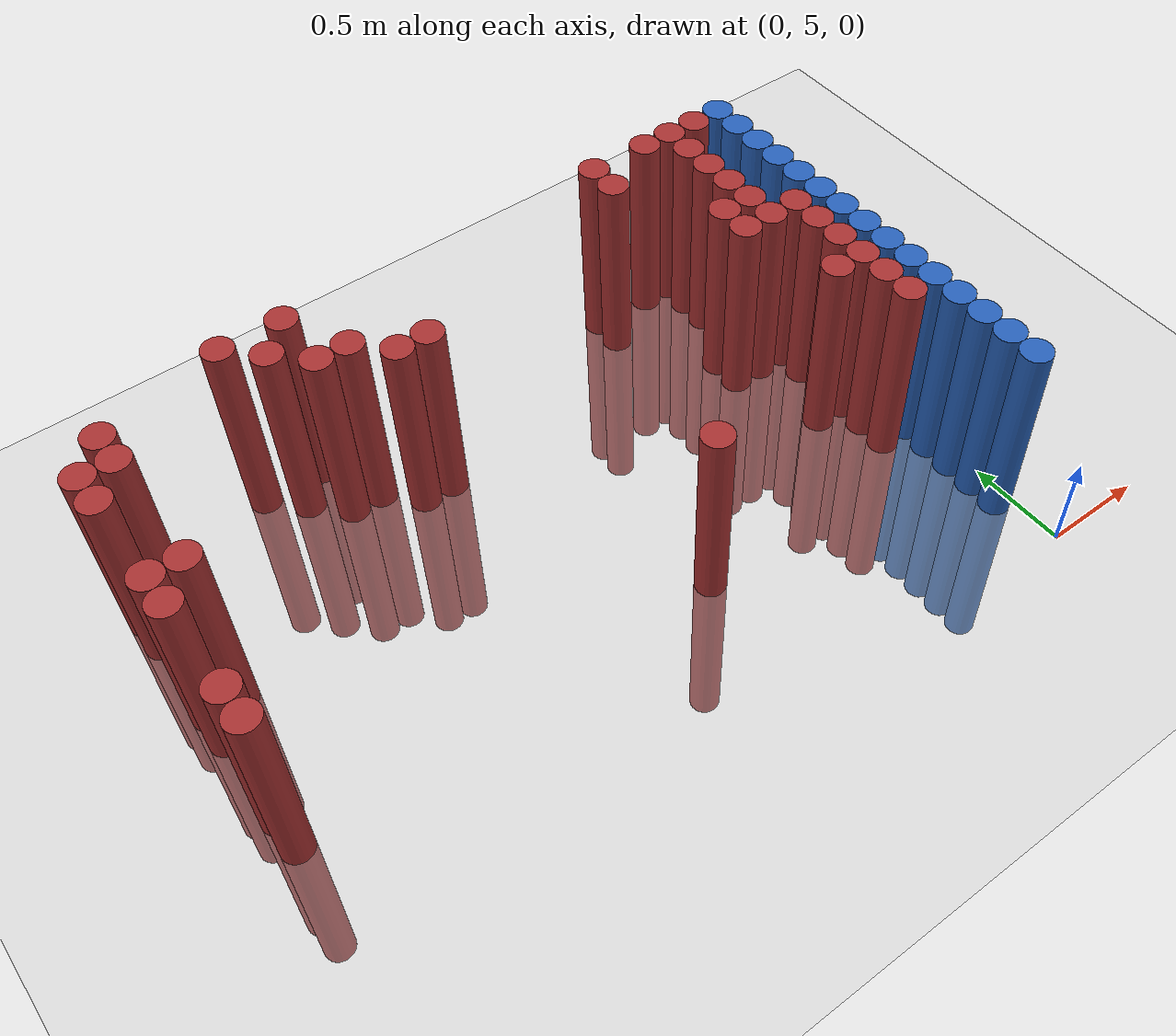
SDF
<sdf version="1.6">
 <world name="default">
  <model name="ground_plane">
   <static>1</static>
   <link name="link">
    <collision name="collision">
     <geometry><plane><normal>0 0 1</normal><size>100 100</size></plane></geometry>
     <surface><friction><ode><mu>100</mu><mu2>50</mu2></ode></friction></surface>
    </collision>
    <visual name="visual">
     <cast_shadows>0</cast_shadows>
     <geometry><plane><normal>0 0 1</normal><size>100 100</size></plane></geometry>
     <material>
      <script><uri>file://media/materials/scripts/gazebo.material</uri><name>Gazebo/Grey</name></script>
     </material>
    </visual>
   </link>
  </model>
  <model name="unit_cylinder_153">
   <static>1</static>
   <pose>-3.525000 5.775000 0.000000 0.000000 0.000000 0.000000</pose>
   <link name="link">
    <inertial>
     <mass>1</mass>
     <inertia><ixx>0.145833</ixx><ixy>0</ixy><ixz>0</ixz><iyy>0.145833</iyy><iyz>0</iyz><izz>0.125</izz></inertia>
    </inertial>
    <collision name="collision">
     <geometry><cylinder><radius>0.075000</radius><length>2</length></cylinder></geometry>
    </collision>
    <visual name="visual">
     <geometry><cylinder><radius>0.075000</radius><length>2</length></cylinder></geometry>
     <material>
      <ambient>0.648000 0.192000 0.192000 1</ambient>
      <diffuse>0.648000 0.192000 0.192000 1</diffuse>
     </material>
     <material>
      <script><name>Gazebo/Grey</name><uri>file://media/materials/scripts/gazebo.material</uri></script>
     </material>
    </visual>
   </link>
  </model>
  <model name="unit_cylinder_154">
   <static>1</static>
   <pose>-3.525000 5.925000 0.000000 0.000000 0.000000 0.000000</pose>
   <link name="link">
    <inertial>
     <mass>1</mass>
     <inertia><ixx>0.145833</ixx><ixy>0</ixy><ixz>0</ixz><iyy>0.145833</iyy><iyz>0</iyz><izz>0.125</izz></inertia>
    </inertial>
    <collision name="collision">
     <geometry><cylinder><radius>0.075000</radius><length>2</length></cylinder></geometry>
    </collision>
    <visual name="visual">
     <geometry><cylinder><radius>0.075000</radius><length>2</length></cylinder></geometry>
     <material>
      <ambient>0.648000 0.192000 0.192000 1</ambient>
      <diffuse>0.648000 0.192000 0.192000 1</diffuse>
     </material>
     <material>
      <script><name>Gazebo/Grey</name><uri>file://media/materials/scripts/gazebo.material</uri></script>
     </material>
    </visual>
   </link>
  </model>
  <model name="unit_cylinder_155">
   <static>1</static>
   <pose>-3.525000 6.375000 0.000000 0.000000 0.000000 0.000000</pose>
   <link name="link">
    <inertial>
     <mass>1</mass>
     <inertia><ixx>0.145833</ixx><ixy>0</ixy><ixz>0</ixz><iyy>0.145833</iyy><iyz>0</iyz><izz>0.125</izz></inertia>
    </inertial>
    <collision name="collision">
     <geometry><cylinder><radius>0.075000</radius><length>2</length></cylinder></geometry>
    </collision>
    <visual name="visual">
     <geometry><cylinder><radius>0.075000</radius><length>2</length></cylinder></geometry>
     <material>
      <ambient>0.648000 0.192000 0.192000 1</ambient>
      <diffuse>0.648000 0.192000 0.192000 1</diffuse>
     </material>
     <material>
      <script><name>Gazebo/Grey</name><uri>file://media/materials/scripts/gazebo.material</uri></script>
     </material>
    </visual>
   </link>
  </model>
  <model name="unit_cylinder_156">
   <static>1</static>
   <pose>-3.525000 6.525000 0.000000 0.000000 0.000000 0.000000</pose>
   <link name="link">
    <inertial>
     <mass>1</mass>
     <inertia><ixx>0.145833</ixx><ixy>0</ixy><ixz>0</ixz><iyy>0.145833</iyy><iyz>0</iyz><izz>0.125</izz></inertia>
    </inertial>
    <collision name="collision">
     <geometry><cylinder><radius>0.075000</radius><length>2</length></cylinder></geometry>
    </collision>
    <visual name="visual">
     <geometry><cylinder><radius>0.075000</radius><length>2</length></cylinder></geometry>
     <material>
      <ambient>0.648000 0.192000 0.192000 1</ambient>
      <diffuse>0.648000 0.192000 0.192000 1</diffuse>
     </material>
     <material>
      <script><name>Gazebo/Grey</name><uri>file://media/materials/scripts/gazebo.material</uri></script>
     </material>
    </visual>
   </link>
  </model>
  <model name="unit_cylinder_157">
   <static>1</static>
   <pose>-3.525000 6.975000 0.000000 0.000000 0.000000 0.000000</pose>
   <link name="link">
    <inertial>
     <mass>1</mass>
     <inertia><ixx>0.145833</ixx><ixy>0</ixy><ixz>0</ixz><iyy>0.145833</iyy><iyz>0</iyz><izz>0.125</izz></inertia>
    </inertial>
    <collision name="collision">
     <geometry><cylinder><radius>0.075000</radius><length>2</length></cylinder></geometry>
    </collision>
    <visual name="visual">
     <geometry><cylinder><radius>0.075000</radius><length>2</length></cylinder></geometry>
     <material>
      <ambient>0.648000 0.192000 0.192000 1</ambient>
      <diffuse>0.648000 0.192000 0.192000 1</diffuse>
     </material>
     <material>
      <script><name>Gazebo/Grey</name><uri>file://media/materials/scripts/gazebo.material</uri></script>
     </material>
    </visual>
   </link>
  </model>
  <model name="unit_cylinder_158">
   <static>1</static>
   <pose>-3.525000 7.125000 0.000000 0.000000 0.000000 0.000000</pose>
   <link name="link">
    <inertial>
     <mass>1</mass>
     <inertia><ixx>0.145833</ixx><ixy>0</ixy><ixz>0</ixz><iyy>0.145833</iyy><iyz>0</iyz><izz>0.125</izz></inertia>
    </inertial>
    <collision name="collision">
     <geometry><cylinder><radius>0.075000</radius><length>2</length></cylinder></geometry>
    </collision>
    <visual name="visual">
     <geometry><cylinder><radius>0.075000</radius><length>2</length></cylinder></geometry>
     <material>
      <ambient>0.648000 0.192000 0.192000 1</ambient>
      <diffuse>0.648000 0.192000 0.192000 1</diffuse>
     </material>
     <material>
      <script><name>Gazebo/Grey</name><uri>file://media/materials/scripts/gazebo.material</uri></script>
     </material>
    </visual>
   </link>
  </model>
  <model name="unit_cylinder_162">
   <static>1</static>
   <pose>-3.375000 6.525000 0.000000 0.000000 0.000000 0.000000</pose>
   <link name="link">
    <inertial>
     <mass>1</mass>
     <inertia><ixx>0.145833</ixx><ixy>0</ixy><ixz>0</ixz><iyy>0.145833</iyy><iyz>0</iyz><izz>0.125</izz></inertia>
    </inertial>
    <collision name="collision">
     <geometry><cylinder><radius>0.075000</radius><length>2</length></cylinder></geometry>
    </collision>
    <visual name="visual">
     <geometry><cylinder><radius>0.075000</radius><length>2</length></cylinder></geometry>
     <material>
      <ambient>0.648000 0.192000 0.192000 1</ambient>
      <diffuse>0.648000 0.192000 0.192000 1</diffuse>
     </material>
     <material>
      <script><name>Gazebo/Grey</name><uri>file://media/materials/scripts/gazebo.material</uri></script>
     </material>
    </visual>
   </link>
  </model>
  <model name="unit_cylinder_163">
   <static>1</static>
   <pose>-3.375000 7.125000 0.000000 0.000000 0.000000 0.000000</pose>
   <link name="link">
    <inertial>
     <mass>1</mass>
     <inertia><ixx>0.145833</ixx><ixy>0</ixy><ixz>0</ixz><iyy>0.145833</iyy><iyz>0</iyz><izz>0.125</izz></inertia>
    </inertial>
    <collision name="collision">
     <geometry><cylinder><radius>0.075000</radius><length>2</length></cylinder></geometry>
    </collision>
    <visual name="visual">
     <geometry><cylinder><radius>0.075000</radius><length>2</length></cylinder></geometry>
     <material>
      <ambient>0.648000 0.192000 0.192000 1</ambient>
      <diffuse>0.648000 0.192000 0.192000 1</diffuse>
     </material>
     <material>
      <script><name>Gazebo/Grey</name><uri>file://media/materials/scripts/gazebo.material</uri></script>
     </material>
    </visual>
   </link>
  </model>
  <model name="unit_cylinder_164">
   <static>1</static>
   <pose>-3.375000 7.275000 0.000000 0.000000 0.000000 0.000000</pose>
   <link name="link">
    <inertial>
     <mass>1</mass>
     <inertia><ixx>0.145833</ixx><ixy>0</ixy><ixz>0</ixz><iyy>0.145833</iyy><iyz>0</iyz><izz>0.125</izz></inertia>
    </inertial>
    <collision name="collision">
     <geometry><cylinder><radius>0.075000</radius><length>2</length></cylinder></geometry>
    </collision>
    <visual name="visual">
     <geometry><cylinder><radius>0.075000</radius><length>2</length></cylinder></geometry>
     <material>
      <ambient>0.648000 0.192000 0.192000 1</ambient>
      <diffuse>0.648000 0.192000 0.192000 1</diffuse>
     </material>
     <material>
      <script><name>Gazebo/Grey</name><uri>file://media/materials/scripts/gazebo.material</uri></script>
     </material>
    </visual>
   </link>
  </model>
  <model name="unit_cylinder_167">
   <static>1</static>
   <pose>-2.775000 7.425000 0.000000 0.000000 0.000000 0.000000</pose>
   <link name="link">
    <inertial>
     <mass>1</mass>
     <inertia><ixx>0.145833</ixx><ixy>0</ixy><ixz>0</ixz><iyy>0.145833</iyy><iyz>0</iyz><izz>0.125</izz></inertia>
    </inertial>
    <collision name="collision">
     <geometry><cylinder><radius>0.075000</radius><length>2</length></cylinder></geometry>
    </collision>
    <visual name="visual">
     <geometry><cylinder><radius>0.075000</radius><length>2</length></cylinder></geometry>
     <material>
      <ambient>0.648000 0.192000 0.192000 1</ambient>
      <diffuse>0.648000 0.192000 0.192000 1</diffuse>
     </material>
     <material>
      <script><name>Gazebo/Grey</name><uri>file://media/materials/scripts/gazebo.material</uri></script>
     </material>
    </visual>
   </link>
  </model>
  <model name="unit_cylinder_169">
   <static>1</static>
   <pose>-2.625000 7.275000 0.000000 0.000000 0.000000 0.000000</pose>
   <link name="link">
    <inertial>
     <mass>1</mass>
     <inertia><ixx>0.145833</ixx><ixy>0</ixy><ixz>0</ixz><iyy>0.145833</iyy><iyz>0</iyz><izz>0.125</izz></inertia>
    </inertial>
    <collision name="collision">
     <geometry><cylinder><radius>0.075000</radius><length>2</length></cylinder></geometry>
    </collision>
    <visual name="visual">
     <geometry><cylinder><radius>0.075000</radius><length>2</length></cylinder></geometry>
     <material>
      <ambient>0.648000 0.192000 0.192000 1</ambient>
      <diffuse>0.648000 0.192000 0.192000 1</diffuse>
     </material>
     <material>
      <script><name>Gazebo/Grey</name><uri>file://media/materials/scripts/gazebo.material</uri></script>
     </material>
    </visual>
   </link>
  </model>
  <model name="unit_cylinder_173">
   <static>1</static>
   <pose>-2.475000 7.125000 0.000000 0.000000 0.000000 0.000000</pose>
   <link name="link">
    <inertial>
     <mass>1</mass>
     <inertia><ixx>0.145833</ixx><ixy>0</ixy><ixz>0</ixz><iyy>0.145833</iyy><iyz>0</iyz><izz>0.125</izz></inertia>
    </inertial>
    <collision name="collision">
     <geometry><cylinder><radius>0.075000</radius><length>2</length></cylinder></geometry>
    </collision>
    <visual name="visual">
     <geometry><cylinder><radius>0.075000</radius><length>2</length></cylinder></geometry>
     <material>
      <ambient>0.648000 0.192000 0.192000 1</ambient>
      <diffuse>0.648000 0.192000 0.192000 1</diffuse>
     </material>
     <material>
      <script><name>Gazebo/Grey</name><uri>file://media/materials/scripts/gazebo.material</uri></script>
     </material>
    </visual>
   </link>
  </model>
  <model name="unit_cylinder_174">
   <static>1</static>
   <pose>-2.475000 7.425000 0.000000 0.000000 0.000000 0.000000</pose>
   <link name="link">
    <inertial>
     <mass>1</mass>
     <inertia><ixx>0.145833</ixx><ixy>0</ixy><ixz>0</ixz><iyy>0.145833</iyy><iyz>0</iyz><izz>0.125</izz></inertia>
    </inertial>
    <collision name="collision">
     <geometry><cylinder><radius>0.075000</radius><length>2</length></cylinder></geometry>
    </collision>
    <visual name="visual">
     <geometry><cylinder><radius>0.075000</radius><length>2</length></cylinder></geometry>
     <material>
      <ambient>0.648000 0.192000 0.192000 1</ambient>
      <diffuse>0.648000 0.192000 0.192000 1</diffuse>
     </material>
     <material>
      <script><name>Gazebo/Grey</name><uri>file://media/materials/scripts/gazebo.material</uri></script>
     </material>
    </visual>
   </link>
  </model>
  <model name="unit_cylinder_176">
   <static>1</static>
   <pose>-2.325000 7.125000 0.000000 0.000000 0.000000 0.000000</pose>
   <link name="link">
    <inertial>
     <mass>1</mass>
     <inertia><ixx>0.145833</ixx><ixy>0</ixy><ixz>0</ixz><iyy>0.145833</iyy><iyz>0</iyz><izz>0.125</izz></inertia>
    </inertial>
    <collision name="collision">
     <geometry><cylinder><radius>0.075000</radius><length>2</length></cylinder></geometry>
    </collision>
    <visual name="visual">
     <geometry><cylinder><radius>0.075000</radius><length>2</length></cylinder></geometry>
     <material>
      <ambient>0.648000 0.192000 0.192000 1</ambient>
      <diffuse>0.648000 0.192000 0.192000 1</diffuse>
     </material>
     <material>
      <script><name>Gazebo/Grey</name><uri>file://media/materials/scripts/gazebo.material</uri></script>
     </material>
    </visual>
   </link>
  </model>
  <model name="unit_cylinder_177">
   <static>1</static>
   <pose>-2.175000 6.975000 0.000000 0.000000 0.000000 0.000000</pose>
   <link name="link">
    <inertial>
     <mass>1</mass>
     <inertia><ixx>0.145833</ixx><ixy>0</ixy><ixz>0</ixz><iyy>0.145833</iyy><iyz>0</iyz><izz>0.125</izz></inertia>
    </inertial>
    <collision name="collision">
     <geometry><cylinder><radius>0.075000</radius><length>2</length></cylinder></geometry>
    </collision>
    <visual name="visual">
     <geometry><cylinder><radius>0.075000</radius><length>2</length></cylinder></geometry>
     <material>
      <ambient>0.648000 0.192000 0.192000 1</ambient>
      <diffuse>0.648000 0.192000 0.192000 1</diffuse>
     </material>
     <material>
      <script><name>Gazebo/Grey</name><uri>file://media/materials/scripts/gazebo.material</uri></script>
     </material>
    </visual>
   </link>
  </model>
  <model name="unit_cylinder_181">
   <static>1</static>
   <pose>-2.025000 6.975000 0.000000 0.000000 0.000000 0.000000</pose>
   <link name="link">
    <inertial>
     <mass>1</mass>
     <inertia><ixx>0.145833</ixx><ixy>0</ixy><ixz>0</ixz><iyy>0.145833</iyy><iyz>0</iyz><izz>0.125</izz></inertia>
    </inertial>
    <collision name="collision">
     <geometry><cylinder><radius>0.075000</radius><length>2</length></cylinder></geometry>
    </collision>
    <visual name="visual">
     <geometry><cylinder><radius>0.075000</radius><length>2</length></cylinder></geometry>
     <material>
      <ambient>0.648000 0.192000 0.192000 1</ambient>
      <diffuse>0.648000 0.192000 0.192000 1</diffuse>
     </material>
     <material>
      <script><name>Gazebo/Grey</name><uri>file://media/materials/scripts/gazebo.material</uri></script>
     </material>
    </visual>
   </link>
  </model>
  <model name="unit_cylinder_187">
   <static>1</static>
   <pose>-1.425000 5.775000 0.000000 0.000000 0.000000 0.000000</pose>
   <link name="link">
    <inertial>
     <mass>1</mass>
     <inertia><ixx>0.145833</ixx><ixy>0</ixy><ixz>0</ixz><iyy>0.145833</iyy><iyz>0</iyz><izz>0.125</izz></inertia>
    </inertial>
    <collision name="collision">
     <geometry><cylinder><radius>0.075000</radius><length>2</length></cylinder></geometry>
    </collision>
    <visual name="visual">
     <geometry><cylinder><radius>0.075000</radius><length>2</length></cylinder></geometry>
     <material>
      <ambient>0.648000 0.192000 0.192000 1</ambient>
      <diffuse>0.648000 0.192000 0.192000 1</diffuse>
     </material>
     <material>
      <script><name>Gazebo/Grey</name><uri>file://media/materials/scripts/gazebo.material</uri></script>
     </material>
    </visual>
   </link>
  </model>
  <model name="unit_cylinder_191">
   <static>1</static>
   <pose>-0.825000 7.275000 0.000000 0.000000 0.000000 0.000000</pose>
   <link name="link">
    <inertial>
     <mass>1</mass>
     <inertia><ixx>0.145833</ixx><ixy>0</ixy><ixz>0</ixz><iyy>0.145833</iyy><iyz>0</iyz><izz>0.125</izz></inertia>
    </inertial>
    <collision name="collision">
     <geometry><cylinder><radius>0.075000</radius><length>2</length></cylinder></geometry>
    </collision>
    <visual name="visual">
     <geometry><cylinder><radius>0.075000</radius><length>2</length></cylinder></geometry>
     <material>
      <ambient>0.648000 0.192000 0.192000 1</ambient>
      <diffuse>0.648000 0.192000 0.192000 1</diffuse>
     </material>
     <material>
      <script><name>Gazebo/Grey</name><uri>file://media/materials/scripts/gazebo.material</uri></script>
     </material>
    </visual>
   </link>
  </model>
  <model name="unit_cylinder_192">
   <static>1</static>
   <pose>-0.825000 7.425000 0.000000 0.000000 0.000000 0.000000</pose>
   <link name="link">
    <inertial>
     <mass>1</mass>
     <inertia><ixx>0.145833</ixx><ixy>0</ixy><ixz>0</ixz><iyy>0.145833</iyy><iyz>0</iyz><izz>0.125</izz></inertia>
    </inertial>
    <collision name="collision">
     <geometry><cylinder><radius>0.075000</radius><length>2</length></cylinder></geometry>
    </collision>
    <visual name="visual">
     <geometry><cylinder><radius>0.075000</radius><length>2</length></cylinder></geometry>
     <material>
      <ambient>0.648000 0.192000 0.192000 1</ambient>
      <diffuse>0.648000 0.192000 0.192000 1</diffuse>
     </material>
     <material>
      <script><name>Gazebo/Grey</name><uri>file://media/materials/scripts/gazebo.material</uri></script>
     </material>
    </visual>
   </link>
  </model>
  <model name="unit_cylinder_199">
   <static>1</static>
   <pose>-0.525000 6.675000 0.000000 0.000000 0.000000 0.000000</pose>
   <link name="link">
    <inertial>
     <mass>1</mass>
     <inertia><ixx>0.145833</ixx><ixy>0</ixy><ixz>0</ixz><iyy>0.145833</iyy><iyz>0</iyz><izz>0.125</izz></inertia>
    </inertial>
    <collision name="collision">
     <geometry><cylinder><radius>0.075000</radius><length>2</length></cylinder></geometry>
    </collision>
    <visual name="visual">
     <geometry><cylinder><radius>0.075000</radius><length>2</length></cylinder></geometry>
     <material>
      <ambient>0.648000 0.192000 0.192000 1</ambient>
      <diffuse>0.648000 0.192000 0.192000 1</diffuse>
     </material>
     <material>
      <script><name>Gazebo/Grey</name><uri>file://media/materials/scripts/gazebo.material</uri></script>
     </material>
    </visual>
   </link>
  </model>
  <model name="unit_cylinder_200">
   <static>1</static>
   <pose>-0.525000 6.825000 0.000000 0.000000 0.000000 0.000000</pose>
   <link name="link">
    <inertial>
     <mass>1</mass>
     <inertia><ixx>0.145833</ixx><ixy>0</ixy><ixz>0</ixz><iyy>0.145833</iyy><iyz>0</iyz><izz>0.125</izz></inertia>
    </inertial>
    <collision name="collision">
     <geometry><cylinder><radius>0.075000</radius><length>2</length></cylinder></geometry>
    </collision>
    <visual name="visual">
     <geometry><cylinder><radius>0.075000</radius><length>2</length></cylinder></geometry>
     <material>
      <ambient>0.648000 0.192000 0.192000 1</ambient>
      <diffuse>0.648000 0.192000 0.192000 1</diffuse>
     </material>
     <material>
      <script><name>Gazebo/Grey</name><uri>file://media/materials/scripts/gazebo.material</uri></script>
     </material>
    </visual>
   </link>
  </model>
  <model name="unit_cylinder_201">
   <static>1</static>
   <pose>-0.525000 7.425000 0.000000 0.000000 0.000000 0.000000</pose>
   <link name="link">
    <inertial>
     <mass>1</mass>
     <inertia><ixx>0.145833</ixx><ixy>0</ixy><ixz>0</ixz><iyy>0.145833</iyy><iyz>0</iyz><izz>0.125</izz></inertia>
    </inertial>
    <collision name="collision">
     <geometry><cylinder><radius>0.075000</radius><length>2</length></cylinder></geometry>
    </collision>
    <visual name="visual">
     <geometry><cylinder><radius>0.075000</radius><length>2</length></cylinder></geometry>
     <material>
      <ambient>0.648000 0.192000 0.192000 1</ambient>
      <diffuse>0.648000 0.192000 0.192000 1</diffuse>
     </material>
     <material>
      <script><name>Gazebo/Grey</name><uri>file://media/materials/scripts/gazebo.material</uri></script>
     </material>
    </visual>
   </link>
  </model>
  <model name="unit_cylinder_202">
   <static>1</static>
   <pose>-0.375000 6.225000 0.000000 0.000000 0.000000 0.000000</pose>
   <link name="link">
    <inertial>
     <mass>1</mass>
     <inertia><ixx>0.145833</ixx><ixy>0</ixy><ixz>0</ixz><iyy>0.145833</iyy><iyz>0</iyz><izz>0.125</izz></inertia>
    </inertial>
    <collision name="collision">
     <geometry><cylinder><radius>0.075000</radius><length>2</length></cylinder></geometry>
    </collision>
    <visual name="visual">
     <geometry><cylinder><radius>0.075000</radius><length>2</length></cylinder></geometry>
     <material>
      <ambient>0.648000 0.192000 0.192000 1</ambient>
      <diffuse>0.648000 0.192000 0.192000 1</diffuse>
     </material>
     <material>
      <script><name>Gazebo/Grey</name><uri>file://media/materials/scripts/gazebo.material</uri></script>
     </material>
    </visual>
   </link>
  </model>
  <model name="unit_cylinder_203">
   <static>1</static>
   <pose>-0.375000 6.675000 0.000000 0.000000 0.000000 0.000000</pose>
   <link name="link">
    <inertial>
     <mass>1</mass>
     <inertia><ixx>0.145833</ixx><ixy>0</ixy><ixz>0</ixz><iyy>0.145833</iyy><iyz>0</iyz><izz>0.125</izz></inertia>
    </inertial>
    <collision name="collision">
     <geometry><cylinder><radius>0.075000</radius><length>2</length></cylinder></geometry>
    </collision>
    <visual name="visual">
     <geometry><cylinder><radius>0.075000</radius><length>2</length></cylinder></geometry>
     <material>
      <ambient>0.648000 0.192000 0.192000 1</ambient>
      <diffuse>0.648000 0.192000 0.192000 1</diffuse>
     </material>
     <material>
      <script><name>Gazebo/Grey</name><uri>file://media/materials/scripts/gazebo.material</uri></script>
     </material>
    </visual>
   </link>
  </model>
  <model name="unit_cylinder_204">
   <static>1</static>
   <pose>-0.375000 6.825000 0.000000 0.000000 0.000000 0.000000</pose>
   <link name="link">
    <inertial>
     <mass>1</mass>
     <inertia><ixx>0.145833</ixx><ixy>0</ixy><ixz>0</ixz><iyy>0.145833</iyy><iyz>0</iyz><izz>0.125</izz></inertia>
    </inertial>
    <collision name="collision">
     <geometry><cylinder><radius>0.075000</radius><length>2</length></cylinder></geometry>
    </collision>
    <visual name="visual">
     <geometry><cylinder><radius>0.075000</radius><length>2</length></cylinder></geometry>
     <material>
      <ambient>0.648000 0.192000 0.192000 1</ambient>
      <diffuse>0.648000 0.192000 0.192000 1</diffuse>
     </material>
     <material>
      <script><name>Gazebo/Grey</name><uri>file://media/materials/scripts/gazebo.material</uri></script>
     </material>
    </visual>
   </link>
  </model>
  <model name="unit_cylinder_205">
   <static>1</static>
   <pose>-0.375000 6.975000 0.000000 0.000000 0.000000 0.000000</pose>
   <link name="link">
    <inertial>
     <mass>1</mass>
     <inertia><ixx>0.145833</ixx><ixy>0</ixy><ixz>0</ixz><iyy>0.145833</iyy><iyz>0</iyz><izz>0.125</izz></inertia>
    </inertial>
    <collision name="collision">
     <geometry><cylinder><radius>0.075000</radius><length>2</length></cylinder></geometry>
    </collision>
    <visual name="visual">
     <geometry><cylinder><radius>0.075000</radius><length>2</length></cylinder></geometry>
     <material>
      <ambient>0.648000 0.192000 0.192000 1</ambient>
      <diffuse>0.648000 0.192000 0.192000 1</diffuse>
     </material>
     <material>
      <script><name>Gazebo/Grey</name><uri>file://media/materials/scripts/gazebo.material</uri></script>
     </material>
    </visual>
   </link>
  </model>
  <model name="unit_cylinder_206">
   <static>1</static>
   <pose>-0.375000 7.125000 0.000000 0.000000 0.000000 0.000000</pose>
   <link name="link">
    <inertial>
     <mass>1</mass>
     <inertia><ixx>0.145833</ixx><ixy>0</ixy><ixz>0</ixz><iyy>0.145833</iyy><iyz>0</iyz><izz>0.125</izz></inertia>
    </inertial>
    <collision name="collision">
     <geometry><cylinder><radius>0.075000</radius><length>2</length></cylinder></geometry>
    </collision>
    <visual name="visual">
     <geometry><cylinder><radius>0.075000</radius><length>2</length></cylinder></geometry>
     <material>
      <ambient>0.648000 0.192000 0.192000 1</ambient>
      <diffuse>0.648000 0.192000 0.192000 1</diffuse>
     </material>
     <material>
      <script><name>Gazebo/Grey</name><uri>file://media/materials/scripts/gazebo.material</uri></script>
     </material>
    </visual>
   </link>
  </model>
  <model name="unit_cylinder_207">
   <static>1</static>
   <pose>-0.375000 7.275000 0.000000 0.000000 0.000000 0.000000</pose>
   <link name="link">
    <inertial>
     <mass>1</mass>
     <inertia><ixx>0.145833</ixx><ixy>0</ixy><ixz>0</ixz><iyy>0.145833</iyy><iyz>0</iyz><izz>0.125</izz></inertia>
    </inertial>
    <collision name="collision">
     <geometry><cylinder><radius>0.075000</radius><length>2</length></cylinder></geometry>
    </collision>
    <visual name="visual">
     <geometry><cylinder><radius>0.075000</radius><length>2</length></cylinder></geometry>
     <material>
      <ambient>0.648000 0.192000 0.192000 1</ambient>
      <diffuse>0.648000 0.192000 0.192000 1</diffuse>
     </material>
     <material>
      <script><name>Gazebo/Grey</name><uri>file://media/materials/scripts/gazebo.material</uri></script>
     </material>
    </visual>
   </link>
  </model>
  <model name="unit_cylinder_208">
   <static>1</static>
   <pose>-0.375000 7.425000 0.000000 0.000000 0.000000 0.000000</pose>
   <link name="link">
    <inertial>
     <mass>1</mass>
     <inertia><ixx>0.145833</ixx><ixy>0</ixy><ixz>0</ixz><iyy>0.145833</iyy><iyz>0</iyz><izz>0.125</izz></inertia>
    </inertial>
    <collision name="collision">
     <geometry><cylinder><radius>0.075000</radius><length>2</length></cylinder></geometry>
    </collision>
    <visual name="visual">
     <geometry><cylinder><radius>0.075000</radius><length>2</length></cylinder></geometry>
     <material>
      <ambient>0.648000 0.192000 0.192000 1</ambient>
      <diffuse>0.648000 0.192000 0.192000 1</diffuse>
     </material>
     <material>
      <script><name>Gazebo/Grey</name><uri>file://media/materials/scripts/gazebo.material</uri></script>
     </material>
    </visual>
   </link>
  </model>
  <model name="unit_cylinder_211">
   <static>1</static>
   <pose>-0.225000 5.925000 0.000000 0.000000 0.000000 0.000000</pose>
   <link name="link">
    <inertial>
     <mass>1</mass>
     <inertia><ixx>0.145833</ixx><ixy>0</ixy><ixz>0</ixz><iyy>0.145833</iyy><iyz>0</iyz><izz>0.125</izz></inertia>
    </inertial>
    <collision name="collision">
     <geometry><cylinder><radius>0.075000</radius><length>2</length></cylinder></geometry>
    </collision>
    <visual name="visual">
     <geometry><cylinder><radius>0.075000</radius><length>2</length></cylinder></geometry>
     <material>
      <ambient>0.648000 0.192000 0.192000 1</ambient>
      <diffuse>0.648000 0.192000 0.192000 1</diffuse>
     </material>
     <material>
      <script><name>Gazebo/Grey</name><uri>file://media/materials/scripts/gazebo.material</uri></script>
     </material>
    </visual>
   </link>
  </model>
  <model name="unit_cylinder_212">
   <static>1</static>
   <pose>-0.225000 6.075000 0.000000 0.000000 0.000000 0.000000</pose>
   <link name="link">
    <inertial>
     <mass>1</mass>
     <inertia><ixx>0.145833</ixx><ixy>0</ixy><ixz>0</ixz><iyy>0.145833</iyy><iyz>0</iyz><izz>0.125</izz></inertia>
    </inertial>
    <collision name="collision">
     <geometry><cylinder><radius>0.075000</radius><length>2</length></cylinder></geometry>
    </collision>
    <visual name="visual">
     <geometry><cylinder><radius>0.075000</radius><length>2</length></cylinder></geometry>
     <material>
      <ambient>0.648000 0.192000 0.192000 1</ambient>
      <diffuse>0.648000 0.192000 0.192000 1</diffuse>
     </material>
     <material>
      <script><name>Gazebo/Grey</name><uri>file://media/materials/scripts/gazebo.material</uri></script>
     </material>
    </visual>
   </link>
  </model>
  <model name="unit_cylinder_213">
   <static>1</static>
   <pose>-0.225000 6.225000 0.000000 0.000000 0.000000 0.000000</pose>
   <link name="link">
    <inertial>
     <mass>1</mass>
     <inertia><ixx>0.145833</ixx><ixy>0</ixy><ixz>0</ixz><iyy>0.145833</iyy><iyz>0</iyz><izz>0.125</izz></inertia>
    </inertial>
    <collision name="collision">
     <geometry><cylinder><radius>0.075000</radius><length>2</length></cylinder></geometry>
    </collision>
    <visual name="visual">
     <geometry><cylinder><radius>0.075000</radius><length>2</length></cylinder></geometry>
     <material>
      <ambient>0.648000 0.192000 0.192000 1</ambient>
      <diffuse>0.648000 0.192000 0.192000 1</diffuse>
     </material>
     <material>
      <script><name>Gazebo/Grey</name><uri>file://media/materials/scripts/gazebo.material</uri></script>
     </material>
    </visual>
   </link>
  </model>
  <model name="unit_cylinder_214">
   <static>1</static>
   <pose>-0.225000 6.375000 0.000000 0.000000 0.000000 0.000000</pose>
   <link name="link">
    <inertial>
     <mass>1</mass>
     <inertia><ixx>0.145833</ixx><ixy>0</ixy><ixz>0</ixz><iyy>0.145833</iyy><iyz>0</iyz><izz>0.125</izz></inertia>
    </inertial>
    <collision name="collision">
     <geometry><cylinder><radius>0.075000</radius><length>2</length></cylinder></geometry>
    </collision>
    <visual name="visual">
     <geometry><cylinder><radius>0.075000</radius><length>2</length></cylinder></geometry>
     <material>
      <ambient>0.648000 0.192000 0.192000 1</ambient>
      <diffuse>0.648000 0.192000 0.192000 1</diffuse>
     </material>
     <material>
      <script><name>Gazebo/Grey</name><uri>file://media/materials/scripts/gazebo.material</uri></script>
     </material>
    </visual>
   </link>
  </model>
  <model name="unit_cylinder_215">
   <static>1</static>
   <pose>-0.225000 6.525000 0.000000 0.000000 0.000000 0.000000</pose>
   <link name="link">
    <inertial>
     <mass>1</mass>
     <inertia><ixx>0.145833</ixx><ixy>0</ixy><ixz>0</ixz><iyy>0.145833</iyy><iyz>0</iyz><izz>0.125</izz></inertia>
    </inertial>
    <collision name="collision">
     <geometry><cylinder><radius>0.075000</radius><length>2</length></cylinder></geometry>
    </collision>
    <visual name="visual">
     <geometry><cylinder><radius>0.075000</radius><length>2</length></cylinder></geometry>
     <material>
      <ambient>0.648000 0.192000 0.192000 1</ambient>
      <diffuse>0.648000 0.192000 0.192000 1</diffuse>
     </material>
     <material>
      <script><name>Gazebo/Grey</name><uri>file://media/materials/scripts/gazebo.material</uri></script>
     </material>
    </visual>
   </link>
  </model>
  <model name="unit_cylinder_216">
   <static>1</static>
   <pose>-0.225000 6.675000 0.000000 0.000000 0.000000 0.000000</pose>
   <link name="link">
    <inertial>
     <mass>1</mass>
     <inertia><ixx>0.145833</ixx><ixy>0</ixy><ixz>0</ixz><iyy>0.145833</iyy><iyz>0</iyz><izz>0.125</izz></inertia>
    </inertial>
    <collision name="collision">
     <geometry><cylinder><radius>0.075000</radius><length>2</length></cylinder></geometry>
    </collision>
    <visual name="visual">
     <geometry><cylinder><radius>0.075000</radius><length>2</length></cylinder></geometry>
     <material>
      <ambient>0.648000 0.192000 0.192000 1</ambient>
      <diffuse>0.648000 0.192000 0.192000 1</diffuse>
     </material>
     <material>
      <script><name>Gazebo/Grey</name><uri>file://media/materials/scripts/gazebo.material</uri></script>
     </material>
    </visual>
   </link>
  </model>
  <model name="unit_cylinder_217">
   <static>1</static>
   <pose>-0.225000 7.425000 0.000000 0.000000 0.000000 0.000000</pose>
   <link name="link">
    <inertial>
     <mass>1</mass>
     <inertia><ixx>0.145833</ixx><ixy>0</ixy><ixz>0</ixz><iyy>0.145833</iyy><iyz>0</iyz><izz>0.125</izz></inertia>
    </inertial>
    <collision name="collision">
     <geometry><cylinder><radius>0.075000</radius><length>2</length></cylinder></geometry>
    </collision>
    <visual name="visual">
     <geometry><cylinder><radius>0.075000</radius><length>2</length></cylinder></geometry>
     <material>
      <ambient>0.648000 0.192000 0.192000 1</ambient>
      <diffuse>0.648000 0.192000 0.192000 1</diffuse>
     </material>
     <material>
      <script><name>Gazebo/Grey</name><uri>file://media/materials/scripts/gazebo.material</uri></script>
     </material>
    </visual>
   </link>
  </model>
  <model name="unit_cylinder_227">
   <static>1</static>
   <pose>-0.075000 5.325000 0.000000 0.000000 0.000000 0.000000</pose>
   <link name="link">
    <inertial>
     <mass>1</mass>
     <inertia><ixx>0.145833</ixx><ixy>0</ixy><ixz>0</ixz><iyy>0.145833</iyy><iyz>0</iyz><izz>0.125</izz></inertia>
    </inertial>
    <collision name="collision">
     <geometry><cylinder><radius>0.075000</radius><length>2</length></cylinder></geometry>
    </collision>
    <visual name="visual">
     <geometry><cylinder><radius>0.075000</radius><length>2</length></cylinder></geometry>
     <material>
      <ambient>0.152000 0.379000 0.720000 1</ambient>
      <diffuse>0.152000 0.379000 0.720000 1</diffuse>
     </material>
     <material>
      <script><name>Gazebo/Grey</name><uri>file://media/materials/scripts/gazebo.material</uri></script>
     </material>
    </visual>
   </link>
  </model>
  <model name="unit_cylinder_228">
   <static>1</static>
   <pose>-0.075000 5.475000 0.000000 0.000000 0.000000 0.000000</pose>
   <link name="link">
    <inertial>
     <mass>1</mass>
     <inertia><ixx>0.145833</ixx><ixy>0</ixy><ixz>0</ixz><iyy>0.145833</iyy><iyz>0</iyz><izz>0.125</izz></inertia>
    </inertial>
    <collision name="collision">
     <geometry><cylinder><radius>0.075000</radius><length>2</length></cylinder></geometry>
    </collision>
    <visual name="visual">
     <geometry><cylinder><radius>0.075000</radius><length>2</length></cylinder></geometry>
     <material>
      <ambient>0.152000 0.379000 0.720000 1</ambient>
      <diffuse>0.152000 0.379000 0.720000 1</diffuse>
     </material>
     <material>
      <script><name>Gazebo/Grey</name><uri>file://media/materials/scripts/gazebo.material</uri></script>
     </material>
    </visual>
   </link>
  </model>
  <model name="unit_cylinder_229">
   <static>1</static>
   <pose>-0.075000 5.625000 0.000000 0.000000 0.000000 0.000000</pose>
   <link name="link">
    <inertial>
     <mass>1</mass>
     <inertia><ixx>0.145833</ixx><ixy>0</ixy><ixz>0</ixz><iyy>0.145833</iyy><iyz>0</iyz><izz>0.125</izz></inertia>
    </inertial>
    <collision name="collision">
     <geometry><cylinder><radius>0.075000</radius><length>2</length></cylinder></geometry>
    </collision>
    <visual name="visual">
     <geometry><cylinder><radius>0.075000</radius><length>2</length></cylinder></geometry>
     <material>
      <ambient>0.152000 0.379000 0.720000 1</ambient>
      <diffuse>0.152000 0.379000 0.720000 1</diffuse>
     </material>
     <material>
      <script><name>Gazebo/Grey</name><uri>file://media/materials/scripts/gazebo.material</uri></script>
     </material>
    </visual>
   </link>
  </model>
  <model name="unit_cylinder_230">
   <static>1</static>
   <pose>-0.075000 5.775000 0.000000 0.000000 0.000000 0.000000</pose>
   <link name="link">
    <inertial>
     <mass>1</mass>
     <inertia><ixx>0.145833</ixx><ixy>0</ixy><ixz>0</ixz><iyy>0.145833</iyy><iyz>0</iyz><izz>0.125</izz></inertia>
    </inertial>
    <collision name="collision">
     <geometry><cylinder><radius>0.075000</radius><length>2</length></cylinder></geometry>
    </collision>
    <visual name="visual">
     <geometry><cylinder><radius>0.075000</radius><length>2</length></cylinder></geometry>
     <material>
      <ambient>0.152000 0.379000 0.720000 1</ambient>
      <diffuse>0.152000 0.379000 0.720000 1</diffuse>
     </material>
     <material>
      <script><name>Gazebo/Grey</name><uri>file://media/materials/scripts/gazebo.material</uri></script>
     </material>
    </visual>
   </link>
  </model>
  <model name="unit_cylinder_231">
   <static>1</static>
   <pose>-0.075000 5.925000 0.000000 0.000000 0.000000 0.000000</pose>
   <link name="link">
    <inertial>
     <mass>1</mass>
     <inertia><ixx>0.145833</ixx><ixy>0</ixy><ixz>0</ixz><iyy>0.145833</iyy><iyz>0</iyz><izz>0.125</izz></inertia>
    </inertial>
    <collision name="collision">
     <geometry><cylinder><radius>0.075000</radius><length>2</length></cylinder></geometry>
    </collision>
    <visual name="visual">
     <geometry><cylinder><radius>0.075000</radius><length>2</length></cylinder></geometry>
     <material>
      <ambient>0.152000 0.379000 0.720000 1</ambient>
      <diffuse>0.152000 0.379000 0.720000 1</diffuse>
     </material>
     <material>
      <script><name>Gazebo/Grey</name><uri>file://media/materials/scripts/gazebo.material</uri></script>
     </material>
    </visual>
   </link>
  </model>
  <model name="unit_cylinder_232">
   <static>1</static>
   <pose>-0.075000 6.075000 0.000000 0.000000 0.000000 0.000000</pose>
   <link name="link">
    <inertial>
     <mass>1</mass>
     <inertia><ixx>0.145833</ixx><ixy>0</ixy><ixz>0</ixz><iyy>0.145833</iyy><iyz>0</iyz><izz>0.125</izz></inertia>
    </inertial>
    <collision name="collision">
     <geometry><cylinder><radius>0.075000</radius><length>2</length></cylinder></geometry>
    </collision>
    <visual name="visual">
     <geometry><cylinder><radius>0.075000</radius><length>2</length></cylinder></geometry>
     <material>
      <ambient>0.152000 0.379000 0.720000 1</ambient>
      <diffuse>0.152000 0.379000 0.720000 1</diffuse>
     </material>
     <material>
      <script><name>Gazebo/Grey</name><uri>file://media/materials/scripts/gazebo.material</uri></script>
     </material>
    </visual>
   </link>
  </model>
  <model name="unit_cylinder_233">
   <static>1</static>
   <pose>-0.075000 6.225000 0.000000 0.000000 0.000000 0.000000</pose>
   <link name="link">
    <inertial>
     <mass>1</mass>
     <inertia><ixx>0.145833</ixx><ixy>0</ixy><ixz>0</ixz><iyy>0.145833</iyy><iyz>0</iyz><izz>0.125</izz></inertia>
    </inertial>
    <collision name="collision">
     <geometry><cylinder><radius>0.075000</radius><length>2</length></cylinder></geometry>
    </collision>
    <visual name="visual">
     <geometry><cylinder><radius>0.075000</radius><length>2</length></cylinder></geometry>
     <material>
      <ambient>0.152000 0.379000 0.720000 1</ambient>
      <diffuse>0.152000 0.379000 0.720000 1</diffuse>
     </material>
     <material>
      <script><name>Gazebo/Grey</name><uri>file://media/materials/scripts/gazebo.material</uri></script>
     </material>
    </visual>
   </link>
  </model>
  <model name="unit_cylinder_234">
   <static>1</static>
   <pose>-0.075000 6.375000 0.000000 0.000000 0.000000 0.000000</pose>
   <link name="link">
    <inertial>
     <mass>1</mass>
     <inertia><ixx>0.145833</ixx><ixy>0</ixy><ixz>0</ixz><iyy>0.145833</iyy><iyz>0</iyz><izz>0.125</izz></inertia>
    </inertial>
    <collision name="collision">
     <geometry><cylinder><radius>0.075000</radius><length>2</length></cylinder></geometry>
    </collision>
    <visual name="visual">
     <geometry><cylinder><radius>0.075000</radius><length>2</length></cylinder></geometry>
     <material>
      <ambient>0.152000 0.379000 0.720000 1</ambient>
      <diffuse>0.152000 0.379000 0.720000 1</diffuse>
     </material>
     <material>
      <script><name>Gazebo/Grey</name><uri>file://media/materials/scripts/gazebo.material</uri></script>
     </material>
    </visual>
   </link>
  </model>
  <model name="unit_cylinder_235">
   <static>1</static>
   <pose>-0.075000 6.525000 0.000000 0.000000 0.000000 0.000000</pose>
   <link name="link">
    <inertial>
     <mass>1</mass>
     <inertia><ixx>0.145833</ixx><ixy>0</ixy><ixz>0</ixz><iyy>0.145833</iyy><iyz>0</iyz><izz>0.125</izz></inertia>
    </inertial>
    <collision name="collision">
     <geometry><cylinder><radius>0.075000</radius><length>2</length></cylinder></geometry>
    </collision>
    <visual name="visual">
     <geometry><cylinder><radius>0.075000</radius><length>2</length></cylinder></geometry>
     <material>
      <ambient>0.152000 0.379000 0.720000 1</ambient>
      <diffuse>0.152000 0.379000 0.720000 1</diffuse>
     </material>
     <material>
      <script><name>Gazebo/Grey</name><uri>file://media/materials/scripts/gazebo.material</uri></script>
     </material>
    </visual>
   </link>
  </model>
  <model name="unit_cylinder_236">
   <static>1</static>
   <pose>-0.075000 6.675000 0.000000 0.000000 0.000000 0.000000</pose>
   <link name="link">
    <inertial>
     <mass>1</mass>
     <inertia><ixx>0.145833</ixx><ixy>0</ixy><ixz>0</ixz><iyy>0.145833</iyy><iyz>0</iyz><izz>0.125</izz></inertia>
    </inertial>
    <collision name="collision">
     <geometry><cylinder><radius>0.075000</radius><length>2</length></cylinder></geometry>
    </collision>
    <visual name="visual">
     <geometry><cylinder><radius>0.075000</radius><length>2</length></cylinder></geometry>
     <material>
      <ambient>0.152000 0.379000 0.720000 1</ambient>
      <diffuse>0.152000 0.379000 0.720000 1</diffuse>
     </material>
     <material>
      <script><name>Gazebo/Grey</name><uri>file://media/materials/scripts/gazebo.material</uri></script>
     </material>
    </visual>
   </link>
  </model>
  <model name="unit_cylinder_237">
   <static>1</static>
   <pose>-0.075000 6.825000 0.000000 0.000000 0.000000 0.000000</pose>
   <link name="link">
    <inertial>
     <mass>1</mass>
     <inertia><ixx>0.145833</ixx><ixy>0</ixy><ixz>0</ixz><iyy>0.145833</iyy><iyz>0</iyz><izz>0.125</izz></inertia>
    </inertial>
    <collision name="collision">
     <geometry><cylinder><radius>0.075000</radius><length>2</length></cylinder></geometry>
    </collision>
    <visual name="visual">
     <geometry><cylinder><radius>0.075000</radius><length>2</length></cylinder></geometry>
     <material>
      <ambient>0.152000 0.379000 0.720000 1</ambient>
      <diffuse>0.152000 0.379000 0.720000 1</diffuse>
     </material>
     <material>
      <script><name>Gazebo/Grey</name><uri>file://media/materials/scripts/gazebo.material</uri></script>
     </material>
    </visual>
   </link>
  </model>
  <model name="unit_cylinder_238">
   <static>1</static>
   <pose>-0.075000 6.975000 0.000000 0.000000 0.000000 0.000000</pose>
   <link name="link">
    <inertial>
     <mass>1</mass>
     <inertia><ixx>0.145833</ixx><ixy>0</ixy><ixz>0</ixz><iyy>0.145833</iyy><iyz>0</iyz><izz>0.125</izz></inertia>
    </inertial>
    <collision name="collision">
     <geometry><cylinder><radius>0.075000</radius><length>2</length></cylinder></geometry>
    </collision>
    <visual name="visual">
     <geometry><cylinder><radius>0.075000</radius><length>2</length></cylinder></geometry>
     <material>
      <ambient>0.152000 0.379000 0.720000 1</ambient>
      <diffuse>0.152000 0.379000 0.720000 1</diffuse>
     </material>
     <material>
      <script><name>Gazebo/Grey</name><uri>file://media/materials/scripts/gazebo.material</uri></script>
     </material>
    </visual>
   </link>
  </model>
  <model name="unit_cylinder_239">
   <static>1</static>
   <pose>-0.075000 7.125000 0.000000 0.000000 0.000000 0.000000</pose>
   <link name="link">
    <inertial>
     <mass>1</mass>
     <inertia><ixx>0.145833</ixx><ixy>0</ixy><ixz>0</ixz><iyy>0.145833</iyy><iyz>0</iyz><izz>0.125</izz></inertia>
    </inertial>
    <collision name="collision">
     <geometry><cylinder><radius>0.075000</radius><length>2</length></cylinder></geometry>
    </collision>
    <visual name="visual">
     <geometry><cylinder><radius>0.075000</radius><length>2</length></cylinder></geometry>
     <material>
      <ambient>0.152000 0.379000 0.720000 1</ambient>
      <diffuse>0.152000 0.379000 0.720000 1</diffuse>
     </material>
     <material>
      <script><name>Gazebo/Grey</name><uri>file://media/materials/scripts/gazebo.material</uri></script>
     </material>
    </visual>
   </link>
  </model>
  <model name="unit_cylinder_240">
   <static>1</static>
   <pose>-0.075000 7.275000 0.000000 0.000000 0.000000 0.000000</pose>
   <link name="link">
    <inertial>
     <mass>1</mass>
     <inertia><ixx>0.145833</ixx><ixy>0</ixy><ixz>0</ixz><iyy>0.145833</iyy><iyz>0</iyz><izz>0.125</izz></inertia>
    </inertial>
    <collision name="collision">
     <geometry><cylinder><radius>0.075000</radius><length>2</length></cylinder></geometry>
    </collision>
    <visual name="visual">
     <geometry><cylinder><radius>0.075000</radius><length>2</length></cylinder></geometry>
     <material>
      <ambient>0.152000 0.379000 0.720000 1</ambient>
      <diffuse>0.152000 0.379000 0.720000 1</diffuse>
     </material>
     <material>
      <script><name>Gazebo/Grey</name><uri>file://media/materials/scripts/gazebo.material</uri></script>
     </material>
    </visual>
   </link>
  </model>
  <model name="unit_cylinder_241">
   <static>1</static>
   <pose>-0.075000 7.425000 0.000000 0.000000 0.000000 0.000000</pose>
   <link name="link">
    <inertial>
     <mass>1</mass>
     <inertia><ixx>0.145833</ixx><ixy>0</ixy><ixz>0</ixz><iyy>0.145833</iyy><iyz>0</iyz><izz>0.125</izz></inertia>
    </inertial>
    <collision name="collision">
     <geometry><cylinder><radius>0.075000</radius><length>2</length></cylinder></geometry>
    </collision>
    <visual name="visual">
     <geometry><cylinder><radius>0.075000</radius><length>2</length></cylinder></geometry>
     <material>
      <ambient>0.152000 0.379000 0.720000 1</ambient>
      <diffuse>0.152000 0.379000 0.720000 1</diffuse>
     </material>
     <material>
      <script><name>Gazebo/Grey</name><uri>file://media/materials/scripts/gazebo.material</uri></script>
     </material>
    </visual>
   </link>
  </model>
 </world>
</sdf>
